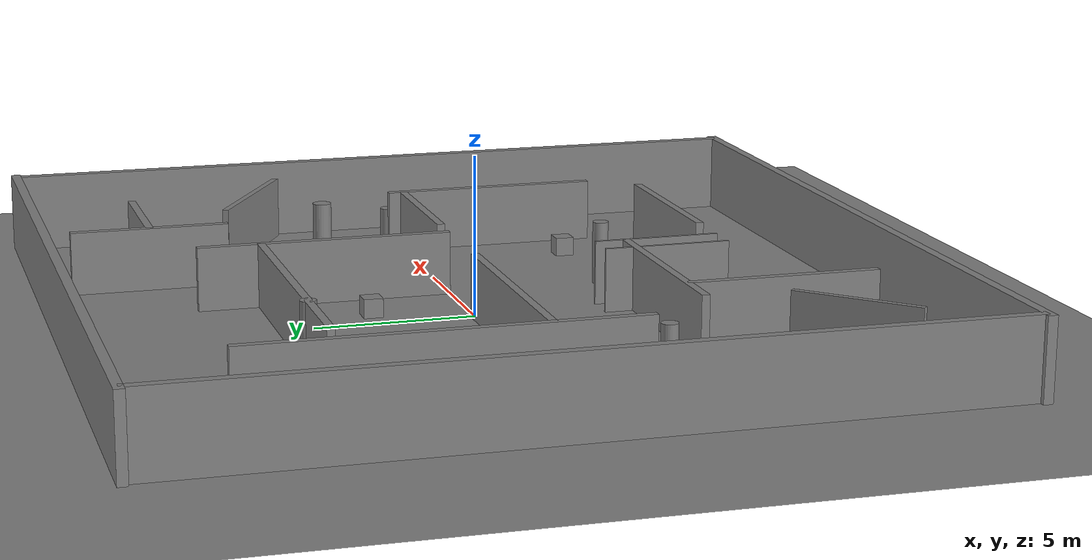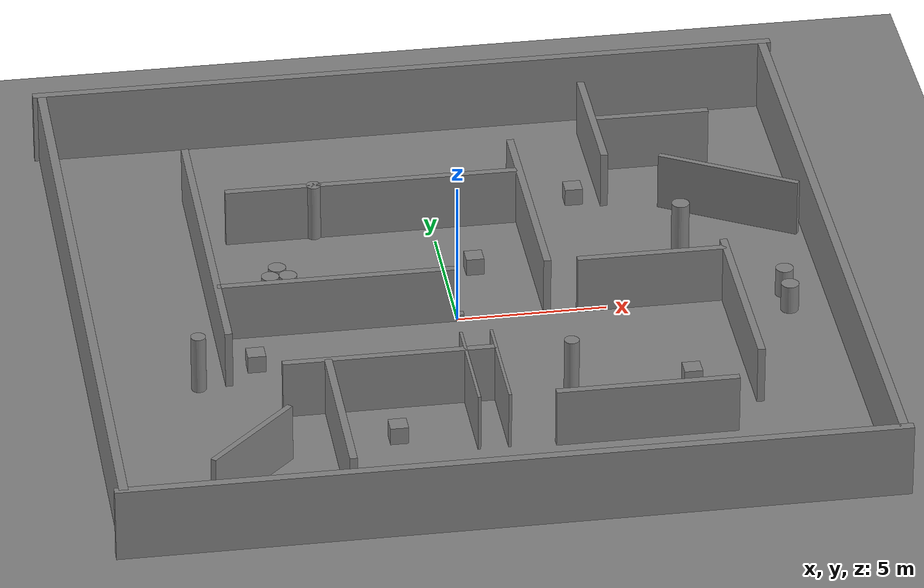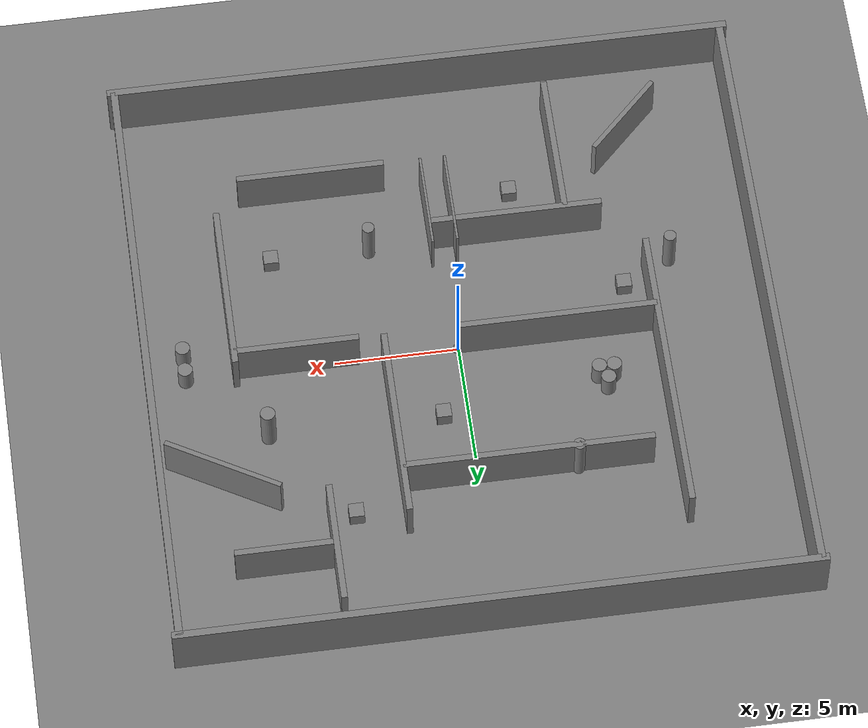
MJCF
<mujoco model="mujoco_maze">

  <compiler angle="radian"/>

  <option timestep="0.05"
          integrator="implicitfast"
          gravity="0 0 -9.81"/>

  <include file="../mujoco_robot.xml"/>

  <worldbody>

    <!-- FLOOR                                                              -->
    <geom name="floor"
          type="plane"
          size="0 0 1"
          friction="0.8 0.005 0.0001"
          contype="1"
          conaffinity="1"/>

    <!-- PERIMETER WALLS  (25.6 m × 25 m footprint, 2.5 m tall)           -->
    <!-- SDF: size X Y Z full → MJCF size hx hy hz half                   -->

    <!-- wall_north: SDF pos=(0, 12.5, 1.25), size=(25.6, 0.3, 2.5) -->
    <body name="wall_north" pos="0 12.5 1.25">
      <geom type="box" size="12.8 0.15 1.25" contype="1" conaffinity="1"/>
    </body>

    <!-- wall_south: SDF pos=(0, -12.5, 1.25), size=(25.6, 0.3, 2.5) -->
    <body name="wall_south" pos="0 -12.5 1.25">
      <geom type="box" size="12.8 0.15 1.25" contype="1" conaffinity="1"/>
    </body>

    <!-- wall_east: SDF pos=(12.5, 0, 1.25), size=(0.3, 25, 2.5) -->
    <body name="wall_east" pos="12.5 0 1.25">
      <geom type="box" size="0.15 12.5 1.25" contype="1" conaffinity="1"/>
    </body>

    <!-- wall_west: SDF pos=(-12.5, 0, 1.25), size=(0.3, 25, 2.5) -->
    <body name="wall_west" pos="-12.5 0 1.25">
      <geom type="box" size="0.15 12.5 1.25" contype="1" conaffinity="1"/>
    </body>

    <!-- INNER MAZE WALLS — Horizontal (along X)                           -->
    <!-- All inner walls are 2.0 m tall; SDF z-centre = 1.0               -->

    <!-- Long central divider left: SDF pos=(-4, 0, 1.0), size=(8, 0.25, 2.0) -->
    <body name="wall_h_center_left" pos="-4 0 1.0">
      <geom type="box" size="4.0 0.125 1.0" contype="1" conaffinity="1"/>
    </body>

    <!-- Long central divider right: SDF pos=(6.5, 0, 1.0), size=(5, 0.25, 2.0) -->
    <body name="wall_h_center_right" pos="6.5 0 1.0">
      <geom type="box" size="2.5 0.125 1.0" contype="1" conaffinity="1"/>
    </body>

    <!-- North corridor wall: SDF pos=(-2, 6, 1.0), size=(10, 0.25, 2.0) -->
    <body name="wall_h_north_corridor" pos="-2 6 1.0">
      <geom type="box" size="5.0 0.125 1.0" contype="1" conaffinity="1"/>
    </body>

    <!-- Dead-end north: SDF pos=(8, 9, 1.0), size=(4, 0.25, 2.0) -->
    <body name="wall_h_deadend_north" pos="8 9 1.0">
      <geom type="box" size="2.0 0.125 1.0" contype="1" conaffinity="1"/>
    </body>

    <!-- South corridor wall: SDF pos=(-3, -5, 1.0), size=(7, 0.25, 2.0) -->
    <body name="wall_h_south_corridor" pos="-3 -5 1.0">
      <geom type="box" size="3.5 0.125 1.0" contype="1" conaffinity="1"/>
    </body>

    <!-- Far south room: SDF pos=(5, -8, 1.0), size=(6, 0.25, 2.0) -->
    <body name="wall_h_south_room" pos="5 -8 1.0">
      <geom type="box" size="3.0 0.125 1.0" contype="1" conaffinity="1"/>
    </body>

    <!-- INNER MAZE WALLS — Vertical (along Y)                             -->

    <!-- West vertical corridor: SDF pos=(-8, 3, 1.0), size=(0.25, 12, 2.0) -->
    <body name="wall_v_west_corridor" pos="-8 3 1.0">
      <geom type="box" size="0.125 6.0 1.0" contype="1" conaffinity="1"/>
    </body>

    <!-- Central vertical barrier: SDF pos=(3, 4, 1.0), size=(0.25, 8, 2.0) -->
    <body name="wall_v_center" pos="3 4 1.0">
      <geom type="box" size="0.125 4.0 1.0" contype="1" conaffinity="1"/>
    </body>

    <!-- East corridor divider: SDF pos=(9, -3, 1.0), size=(0.25, 7, 2.0) -->
    <body name="wall_v_east_divider" pos="9 -3 1.0">
      <geom type="box" size="0.125 3.5 1.0" contype="1" conaffinity="1"/>
    </body>

    <!-- SW room partition: SDF pos=(-5, -8, 1.0), size=(0.25, 6, 2.0) -->
    <body name="wall_v_sw_partition" pos="-5 -8 1.0">
      <geom type="box" size="0.125 3.0 1.0" contype="1" conaffinity="1"/>
    </body>

    <!-- NE corner room: SDF pos=(6, 9, 1.0), size=(0.25, 5, 2.0) -->
    <body name="wall_v_ne_room" pos="6 9 1.0">
      <geom type="box" size="0.125 2.5 1.0" contype="1" conaffinity="1"/>
    </body>

    <!-- INNER MAZE WALLS — Angled                                          -->
    <!-- MJCF euler is roll/pitch/yaw in radians                           -->

    <!-- SW angled barrier: SDF pos=(-8, -9, 1.0) yaw=0.7854 (45°), size=(4, 0.2, 2.0) -->
    <body name="wall_angled_sw" pos="-8 -9 1.0" euler="0 0 0.7854">
      <geom type="box" size="2.0 0.1 1.0" contype="1" conaffinity="1"/>
    </body>

    <!-- NE angled barrier: SDF pos=(10, 5, 1.0) yaw=-0.5236 (-30°), size=(5, 0.2, 2.0) -->
    <body name="wall_angled_ne" pos="10 5 1.0" euler="0 0 -0.5236">
      <geom type="box" size="2.5 0.1 1.0" contype="1" conaffinity="1"/>
    </body>

    <!-- STRUCTURAL PILLARS (cylinders)                                     -->
    <!-- SDF cylinder: radius r, length L → MJCF size="r L/2"             -->

    <!-- pillar_1: SDF pos=(-4, 6, 1.0), r=0.25, length=2.0 -->
    <body name="pillar_1" pos="-4 6 1.0">
      <geom type="cylinder" size="0.25 1.0" contype="1" conaffinity="1"/>
    </body>

    <!-- pillar_2: SDF pos=(3, -5, 1.0), r=0.25, length=2.0 -->
    <body name="pillar_2" pos="3 -5 1.0">
      <geom type="cylinder" size="0.25 1.0" contype="1" conaffinity="1"/>
    </body>

    <!-- pillar_3: SDF pos=(8, 3, 1.0), r=0.30, length=2.0 -->
    <body name="pillar_3" pos="8 3 1.0">
      <geom type="cylinder" size="0.30 1.0" contype="1" conaffinity="1"/>
    </body>

    <!-- pillar_4: SDF pos=(-9, -3, 1.0), r=0.25, length=2.0 -->
    <body name="pillar_4" pos="-9 -3 1.0">
      <geom type="cylinder" size="0.25 1.0" contype="1" conaffinity="1"/>
    </body>

    <!-- BARRELS (static cylinders scattered in corridors)                 -->
    <!-- SDF: r=0.3, length=1.0 (centre z=0.5) → MJCF size="0.3 0.5"     -->

    <body name="barrel_1" pos="-6.0 2.0 0.5">
      <geom type="cylinder" size="0.3 0.5" contype="1" conaffinity="1"/>
    </body>
    <body name="barrel_2" pos="-5.4 2.0 0.5">
      <geom type="cylinder" size="0.3 0.5" contype="1" conaffinity="1"/>
    </body>
    <body name="barrel_3" pos="-5.7 2.55 0.5">
      <geom type="cylinder" size="0.3 0.5" contype="1" conaffinity="1"/>
    </body>
    <body name="barrel_4" pos="11.0 0.0 0.5">
      <geom type="cylinder" size="0.3 0.5" contype="1" conaffinity="1"/>
    </body>
    <body name="barrel_5" pos="11.0 -1.0 0.5">
      <geom type="cylinder" size="0.3 0.5" contype="1" conaffinity="1"/>
    </body>

    <!-- CRATES (box obstacles, static for training stability)             -->
    <!-- SDF: 0.6×0.6×0.6 crates → MJCF size="0.3 0.3 0.3" at z=0.3     -->

    <body name="crate_1" pos="1.0 3.0 0.3">
      <geom type="box" size="0.3 0.3 0.3" contype="1" conaffinity="1"/>
    </body>
    <body name="crate_2" pos="-3.0 -7.0 0.3">
      <geom type="box" size="0.3 0.3 0.3" contype="1" conaffinity="1"/>
    </body>
    <body name="crate_3" pos="7.0 -5.0 0.3">
      <geom type="box" size="0.3 0.3 0.3" contype="1" conaffinity="1"/>
    </body>
    <body name="crate_4" pos="-7.0 -2.0 0.3">
      <geom type="box" size="0.3 0.3 0.3" contype="1" conaffinity="1"/>
    </body>
    <body name="crate_5" pos="5.0 7.0 0.3">
      <geom type="box" size="0.3 0.3 0.3" contype="1" conaffinity="1"/>
    </body>

    <body name="wall_nc_left" pos="-0.5 -6.0 1.0">
      <geom type="box" size="0.05 2.0 1.0" contype="1" conaffinity="1"/>
    </body>
    <body name="wall_nc_right" pos="0.5 -6.0 1.0">
      <geom type="box" size="0.05 2.0 1.0" contype="1" conaffinity="1"/>
    </body>

  </worldbody>

</mujoco>

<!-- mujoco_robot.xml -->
<mujoco model="mujoco_robot">

  <worldbody>
    <body name="base_link" pos="0 0 0.125">
      <freejoint name="base_freejoint"/>
      <geom name="robot_body"
            type="box"
            size="0.20 0.12 0.10"
            mass="5.6"
            contype="1"
            conaffinity="1"
            friction="0.01 0.005 0.0001"/>
      <!-- Single lidar site — mujoco_sim.simulate_lidar() casts rays from here -->
      <site name="lidar_site" pos="0 0 0.175" size="0.01" rgba="1 0 0 0.5"/>
    </body>
  </worldbody>

</mujoco>
